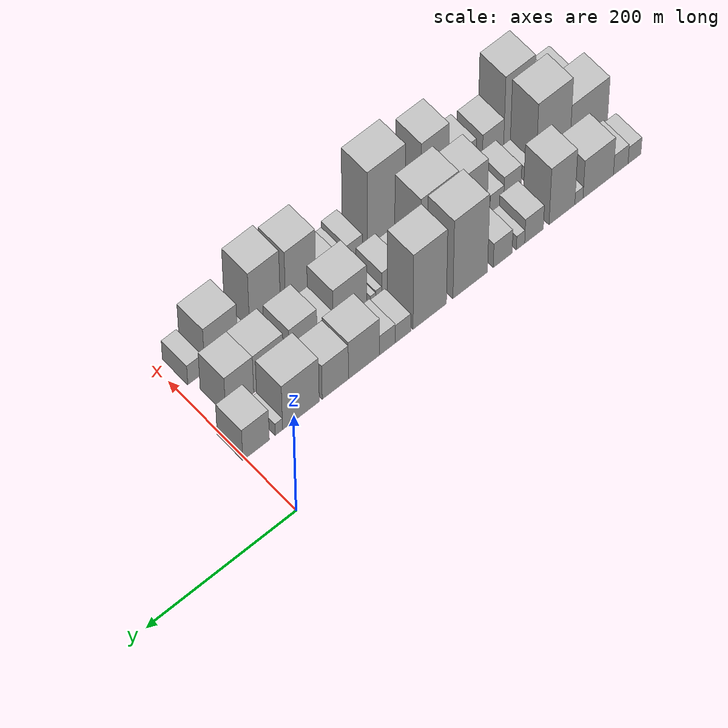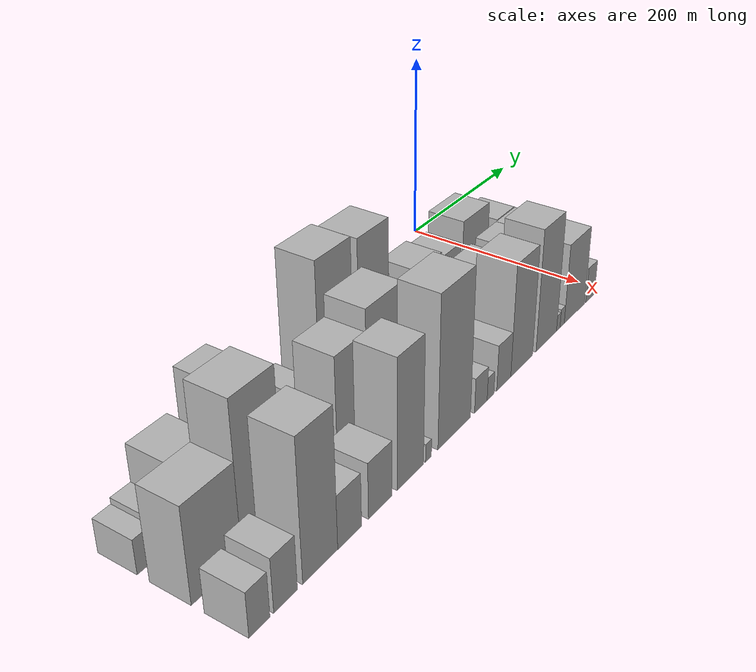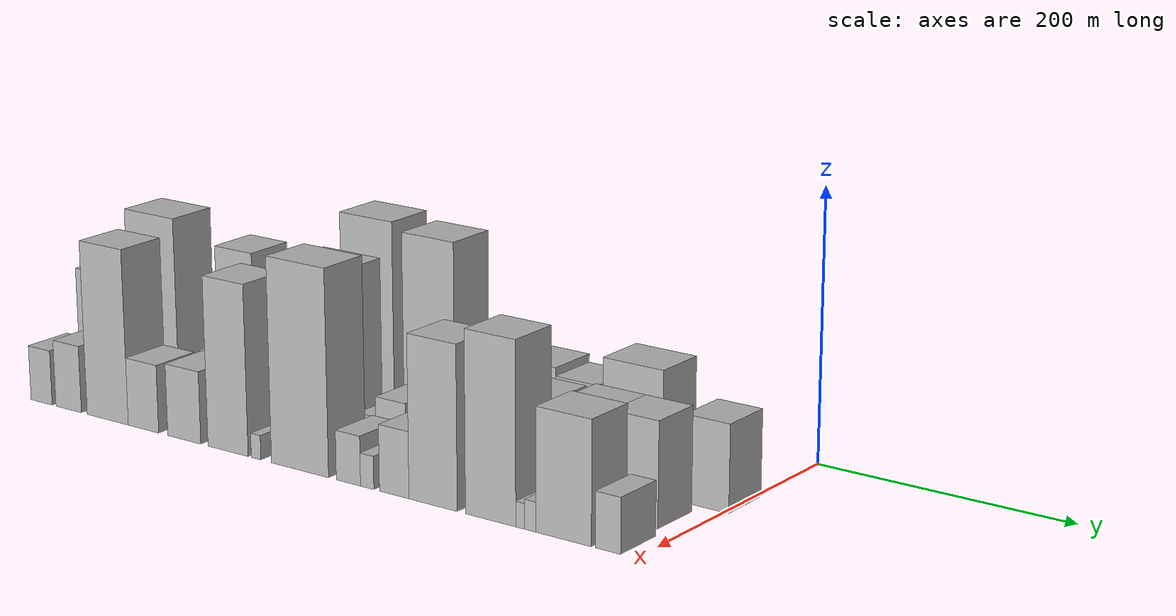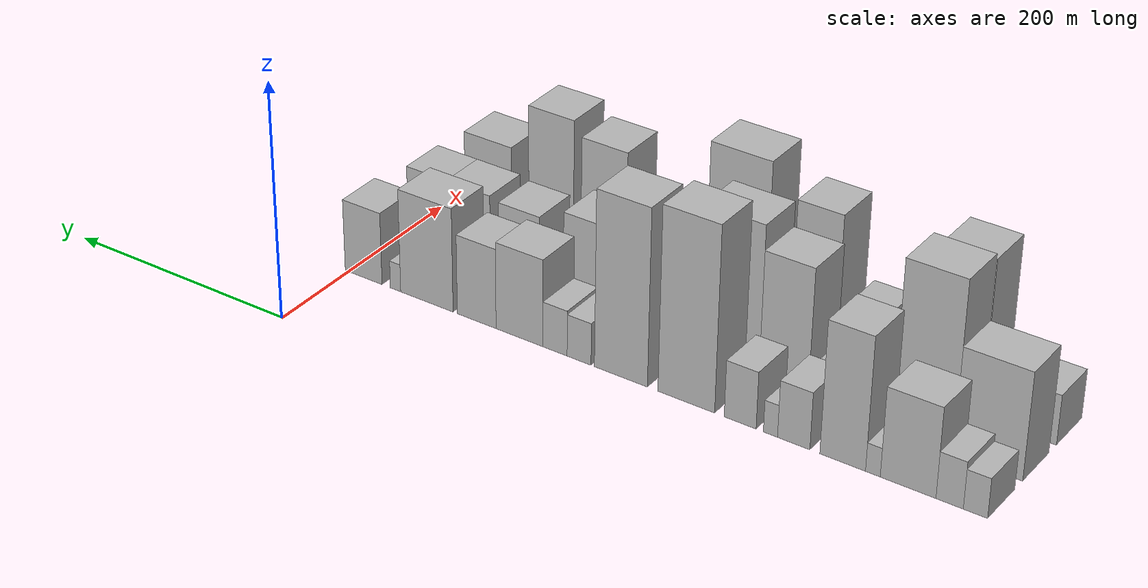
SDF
<sdf version="1.6">
 <world name="default">
  <model name="building_1">
   <static>1</static>
   <pose>100.0000 -538.8014 0 0.000000 0.000000 0.000000</pose>
   <link name="link">
    <pose>0 0 16.50 0 0 0</pose>
    <collision name="collision"><geometry><box><size>40.0000 18.3971 33.0000</size></box></geometry></collision>
    <visual name="visual">
     <cast_shadows>0</cast_shadows>
     <geometry><box><size>40.0000 18.3971 33.0000</size></box></geometry>
     <material>
      <script>
       <uri>model://HANNAS_wall/materials/scripts</uri>
       <uri>model://HANNAS_wall/materials/textures</uri>
       <name>vrc/HANNAS_wall</name>
      </script>
     </material>
    </visual>
   </link>
  </model>
  <model name="building_2">
   <static>1</static>
   <pose>100.0000 -519.1855 0 0.000000 0.000000 0.000000</pose>
   <link name="link">
    <pose>0 0 19.50 0 0 0</pose>
    <collision name="collision"><geometry><box><size>40.0000 20.8348 39.0000</size></box></geometry></collision>
    <visual name="visual">
     <cast_shadows>0</cast_shadows>
     <geometry><box><size>40.0000 20.8348 39.0000</size></box></geometry>
     <material>
      <script>
       <uri>model://HANNAS_wall/materials/scripts</uri>
       <uri>model://HANNAS_wall/materials/textures</uri>
       <name>vrc/HANNAS_wall</name>
      </script>
     </material>
    </visual>
   </link>
  </model>
  <model name="building_3">
   <static>1</static>
   <pose>100.0000 -487.1912 0 0.000000 0.000000 0.000000</pose>
   <link name="link">
    <pose>0 0 37.50 0 0 0</pose>
    <collision name="collision"><geometry><box><size>40.0000 43.1539 75.0000</size></box></geometry></collision>
    <visual name="visual">
     <cast_shadows>0</cast_shadows>
     <geometry><box><size>40.0000 43.1539 75.0000</size></box></geometry>
     <material>
      <script>
       <uri>model://HANNAS_wall/materials/scripts</uri>
       <uri>model://HANNAS_wall/materials/textures</uri>
       <name>vrc/HANNAS_wall</name>
      </script>
     </material>
    </visual>
   </link>
  </model>
  <model name="building_4">
   <static>1</static>
   <pose>100.0000 -459.8287 0 0.000000 0.000000 0.000000</pose>
   <link name="link">
    <pose>0 0 12.00 0 0 0</pose>
    <collision name="collision"><geometry><box><size>40.0000 11.5711 24.0000</size></box></geometry></collision>
    <visual name="visual">
     <cast_shadows>0</cast_shadows>
     <geometry><box><size>40.0000 11.5711 24.0000</size></box></geometry>
     <material>
      <script>
       <uri>model://HANNAS_wall/materials/scripts</uri>
       <uri>model://HANNAS_wall/materials/textures</uri>
       <name>vrc/HANNAS_wall</name>
      </script>
     </material>
    </visual>
   </link>
  </model>
  <model name="building_5">
   <static>1</static>
   <pose>100.0000 -435.8824 0 0.000000 0.000000 0.000000</pose>
   <link name="link">
    <pose>0 0 55.50 0 0 0</pose>
    <collision name="collision"><geometry><box><size>40.0000 36.3215 111.0000</size></box></geometry></collision>
    <visual name="visual">
     <cast_shadows>0</cast_shadows>
     <geometry><box><size>40.0000 36.3215 111.0000</size></box></geometry>
     <material>
      <script>
       <uri>model://HANNAS_wall/materials/scripts</uri>
       <uri>model://HANNAS_wall/materials/textures</uri>
       <name>vrc/HANNAS_wall</name>
      </script>
     </material>
    </visual>
   </link>
  </model>
  <model name="building_6">
   <static>1</static>
   <pose>100.0000 -396.5858 0 0.000000 0.000000 0.000000</pose>
   <link name="link">
    <pose>0 0 24.00 0 0 0</pose>
    <collision name="collision"><geometry><box><size>40.0000 26.2716 48.0000</size></box></geometry></collision>
    <visual name="visual">
     <cast_shadows>0</cast_shadows>
     <geometry><box><size>40.0000 26.2716 48.0000</size></box></geometry>
     <material>
      <script>
       <uri>model://HANNAS_wall/materials/scripts</uri>
       <uri>model://HANNAS_wall/materials/textures</uri>
       <name>vrc/HANNAS_wall</name>
      </script>
     </material>
    </visual>
   </link>
  </model>
  <model name="building_7">
   <static>1</static>
   <pose>100.0000 -377.6897 0 0.000000 0.000000 0.000000</pose>
   <link name="link">
    <pose>0 0 13.50 0 0 0</pose>
    <collision name="collision"><geometry><box><size>40.0000 11.5206 27.0000</size></box></geometry></collision>
    <visual name="visual">
     <cast_shadows>0</cast_shadows>
     <geometry><box><size>40.0000 11.5206 27.0000</size></box></geometry>
     <material>
      <script>
       <uri>model://HANNAS_wall/materials/scripts</uri>
       <uri>model://HANNAS_wall/materials/textures</uri>
       <name>vrc/HANNAS_wall</name>
      </script>
     </material>
    </visual>
   </link>
  </model>
  <model name="building_8">
   <static>1</static>
   <pose>100.0000 -352.7261 0 0.000000 0.000000 0.000000</pose>
   <link name="link">
    <pose>0 0 24.00 0 0 0</pose>
    <collision name="collision"><geometry><box><size>40.0000 26.4067 48.0000</size></box></geometry></collision>
    <visual name="visual">
     <cast_shadows>0</cast_shadows>
     <geometry><box><size>40.0000 26.4067 48.0000</size></box></geometry>
     <material>
      <script>
       <uri>model://HANNAS_wall/materials/scripts</uri>
       <uri>model://HANNAS_wall/materials/textures</uri>
       <name>vrc/HANNAS_wall</name>
      </script>
     </material>
    </visual>
   </link>
  </model>
  <model name="building_9">
   <static>1</static>
   <pose>100.0000 -307.4789 0 0.000000 0.000000 0.000000</pose>
   <link name="link">
    <pose>0 0 78.00 0 0 0</pose>
    <collision name="collision"><geometry><box><size>40.0000 48.0877 156.0000</size></box></geometry></collision>
    <visual name="visual">
     <cast_shadows>0</cast_shadows>
     <geometry><box><size>40.0000 48.0877 156.0000</size></box></geometry>
     <material>
      <script>
       <uri>model://HANNAS_wall/materials/scripts</uri>
       <uri>model://HANNAS_wall/materials/textures</uri>
       <name>vrc/HANNAS_wall</name>
      </script>
     </material>
    </visual>
   </link>
  </model>
  <model name="building_10">
   <static>1</static>
   <pose>100.0000 -251.3428 0 0.000000 0.000000 0.000000</pose>
   <link name="link">
    <pose>0 0 75.00 0 0 0</pose>
    <collision name="collision"><geometry><box><size>40.0000 46.1845 150.0000</size></box></geometry></collision>
    <visual name="visual">
     <cast_shadows>0</cast_shadows>
     <geometry><box><size>40.0000 46.1845 150.0000</size></box></geometry>
     <material>
      <script>
       <uri>model://HANNAS_wall/materials/scripts</uri>
       <uri>model://HANNAS_wall/materials/textures</uri>
       <name>vrc/HANNAS_wall</name>
      </script>
     </material>
    </visual>
   </link>
  </model>
  <model name="building_11">
   <static>1</static>
   <pose>100.0000 -214.6620 0 0.000000 0.000000 0.000000</pose>
   <link name="link">
    <pose>0 0 18.00 0 0 0</pose>
    <collision name="collision"><geometry><box><size>40.0000 21.1770 36.0000</size></box></geometry></collision>
    <visual name="visual">
     <cast_shadows>0</cast_shadows>
     <geometry><box><size>40.0000 21.1770 36.0000</size></box></geometry>
     <material>
      <script>
       <uri>model://HANNAS_wall/materials/scripts</uri>
       <uri>model://HANNAS_wall/materials/textures</uri>
       <name>vrc/HANNAS_wall</name>
      </script>
     </material>
    </visual>
   </link>
  </model>
  <model name="building_12">
   <static>1</static>
   <pose>100.0000 -193.2816 0 0.000000 0.000000 0.000000</pose>
   <link name="link">
    <pose>0 0 19.50 0 0 0</pose>
    <collision name="collision"><geometry><box><size>40.0000 21.5837 39.0000</size></box></geometry></collision>
    <visual name="visual">
     <cast_shadows>0</cast_shadows>
     <geometry><box><size>40.0000 21.5837 39.0000</size></box></geometry>
     <material>
      <script>
       <uri>model://HANNAS_wall/materials/scripts</uri>
       <uri>model://HANNAS_wall/materials/textures</uri>
       <name>vrc/HANNAS_wall</name>
      </script>
     </material>
    </visual>
   </link>
  </model>
  <model name="building_13">
   <static>1</static>
   <pose>100.0000 -161.1651 0 0.000000 0.000000 0.000000</pose>
   <link name="link">
    <pose>0 0 37.50 0 0 0</pose>
    <collision name="collision"><geometry><box><size>40.0000 42.6494 75.0000</size></box></geometry></collision>
    <visual name="visual">
     <cast_shadows>0</cast_shadows>
     <geometry><box><size>40.0000 42.6494 75.0000</size></box></geometry>
     <material>
      <script>
       <uri>model://HANNAS_wall/materials/scripts</uri>
       <uri>model://HANNAS_wall/materials/textures</uri>
       <name>vrc/HANNAS_wall</name>
      </script>
     </material>
    </visual>
   </link>
  </model>
  <model name="building_14">
   <static>1</static>
   <pose>100.0000 -121.9393 0 0.000000 0.000000 0.000000</pose>
   <link name="link">
    <pose>0 0 34.50 0 0 0</pose>
    <collision name="collision"><geometry><box><size>40.0000 35.8023 69.0000</size></box></geometry></collision>
    <visual name="visual">
     <cast_shadows>0</cast_shadows>
     <geometry><box><size>40.0000 35.8023 69.0000</size></box></geometry>
     <material>
      <script>
       <uri>model://HANNAS_wall/materials/scripts</uri>
       <uri>model://HANNAS_wall/materials/textures</uri>
       <name>vrc/HANNAS_wall</name>
      </script>
     </material>
    </visual>
   </link>
  </model>
  <model name="building_15">
   <static>1</static>
   <pose>100.0000 -75.2578 0 0.000000 0.000000 0.000000</pose>
   <link name="link">
    <pose>0 0 45.00 0 0 0</pose>
    <collision name="collision"><geometry><box><size>40.0000 49.5606 90.0000</size></box></geometry></collision>
    <visual name="visual">
     <cast_shadows>0</cast_shadows>
     <geometry><box><size>40.0000 49.5606 90.0000</size></box></geometry>
     <material>
      <script>
       <uri>model://HANNAS_wall/materials/scripts</uri>
       <uri>model://HANNAS_wall/materials/textures</uri>
       <name>vrc/HANNAS_wall</name>
      </script>
     </material>
    </visual>
   </link>
  </model>
  <model name="building_16">
   <static>1</static>
   <pose>100.0000 -45.5275 0 0.000000 0.000000 0.000000</pose>
   <link name="link">
    <pose>0 0 12.00 0 0 0</pose>
    <collision name="collision"><geometry><box><size>40.0000 9.9000 24.0000</size></box></geometry></collision>
    <visual name="visual">
     <cast_shadows>0</cast_shadows>
     <geometry><box><size>40.0000 9.9000 24.0000</size></box></geometry>
     <material>
      <script>
       <uri>model://HANNAS_wall/materials/scripts</uri>
       <uri>model://HANNAS_wall/materials/textures</uri>
       <name>vrc/HANNAS_wall</name>
      </script>
     </material>
    </visual>
   </link>
  </model>
  <model name="building_17">
   <static>1</static>
   <pose>100.0000 -14.7085 0 0.000000 0.000000 0.000000</pose>
   <link name="link">
    <pose>0 0 31.50 0 0 0</pose>
    <collision name="collision"><geometry><box><size>40.0000 35.7380 63.0000</size></box></geometry></collision>
    <visual name="visual">
     <cast_shadows>0</cast_shadows>
     <geometry><box><size>40.0000 35.7380 63.0000</size></box></geometry>
     <material>
      <script>
       <uri>model://HANNAS_wall/materials/scripts</uri>
       <uri>model://HANNAS_wall/materials/textures</uri>
       <name>vrc/HANNAS_wall</name>
      </script>
     </material>
    </visual>
   </link>
  </model>
  <model name="building_36">
   <static>1</static>
   <pose>152.0000 -521.1854 0 0.000000 0.000000 0.000000</pose>
   <link name="link">
    <pose>0 0 45.00 0 0 0</pose>
    <collision name="collision"><geometry><box><size>40.0000 53.6292 90.0000</size></box></geometry></collision>
    <visual name="visual">
     <cast_shadows>0</cast_shadows>
     <geometry><box><size>40.0000 53.6292 90.0000</size></box></geometry>
     <material>
      <script>
       <uri>model://HANNAS_wall/materials/scripts</uri>
       <uri>model://HANNAS_wall/materials/textures</uri>
       <name>vrc/HANNAS_wall</name>
      </script>
     </material>
    </visual>
   </link>
  </model>
  <model name="building_37">
   <static>1</static>
   <pose>152.0000 -470.1884 0 0.000000 0.000000 0.000000</pose>
   <link name="link">
    <pose>0 0 72.00 0 0 0</pose>
    <collision name="collision"><geometry><box><size>40.0000 48.3648 144.0000</size></box></geometry></collision>
    <visual name="visual">
     <cast_shadows>0</cast_shadows>
     <geometry><box><size>40.0000 48.3648 144.0000</size></box></geometry>
     <material>
      <script>
       <uri>model://HANNAS_wall/materials/scripts</uri>
       <uri>model://HANNAS_wall/materials/textures</uri>
       <name>vrc/HANNAS_wall</name>
      </script>
     </material>
    </visual>
   </link>
  </model>
  <model name="building_38">
   <static>1</static>
   <pose>152.0000 -440.2107 0 0.000000 0.000000 0.000000</pose>
   <link name="link">
    <pose>0 0 13.50 0 0 0</pose>
    <collision name="collision"><geometry><box><size>40.0000 11.5907 27.0000</size></box></geometry></collision>
    <visual name="visual">
     <cast_shadows>0</cast_shadows>
     <geometry><box><size>40.0000 11.5907 27.0000</size></box></geometry>
     <material>
      <script>
       <uri>model://HANNAS_wall/materials/scripts</uri>
       <uri>model://HANNAS_wall/materials/textures</uri>
       <name>vrc/HANNAS_wall</name>
      </script>
     </material>
    </visual>
   </link>
  </model>
  <model name="building_39">
   <static>1</static>
   <pose>152.0000 -413.2868 0 0.000000 0.000000 0.000000</pose>
   <link name="link">
    <pose>0 0 24.00 0 0 0</pose>
    <collision name="collision"><geometry><box><size>40.0000 24.2573 48.0000</size></box></geometry></collision>
    <visual name="visual">
     <cast_shadows>0</cast_shadows>
     <geometry><box><size>40.0000 24.2573 48.0000</size></box></geometry>
     <material>
      <script>
       <uri>model://HANNAS_wall/materials/scripts</uri>
       <uri>model://HANNAS_wall/materials/textures</uri>
       <name>vrc/HANNAS_wall</name>
      </script>
     </material>
    </visual>
   </link>
  </model>
  <model name="building_40">
   <static>1</static>
   <pose>152.0000 -391.4128 0 0.000000 0.000000 0.000000</pose>
   <link name="link">
    <pose>0 0 16.50 0 0 0</pose>
    <collision name="collision"><geometry><box><size>40.0000 19.4907 33.0000</size></box></geometry></collision>
    <visual name="visual">
     <cast_shadows>0</cast_shadows>
     <geometry><box><size>40.0000 19.4907 33.0000</size></box></geometry>
     <material>
      <script>
       <uri>model://HANNAS_wall/materials/scripts</uri>
       <uri>model://HANNAS_wall/materials/textures</uri>
       <name>vrc/HANNAS_wall</name>
      </script>
     </material>
    </visual>
   </link>
  </model>
  <model name="building_41">
   <static>1</static>
   <pose>152.0000 -357.0711 0 0.000000 0.000000 0.000000</pose>
   <link name="link">
    <pose>0 0 55.50 0 0 0</pose>
    <collision name="collision"><geometry><box><size>40.0000 41.1926 111.0000</size></box></geometry></collision>
    <visual name="visual">
     <cast_shadows>0</cast_shadows>
     <geometry><box><size>40.0000 41.1926 111.0000</size></box></geometry>
     <material>
      <script>
       <uri>model://HANNAS_wall/materials/scripts</uri>
       <uri>model://HANNAS_wall/materials/textures</uri>
       <name>vrc/HANNAS_wall</name>
      </script>
     </material>
    </visual>
   </link>
  </model>
  <model name="building_42">
   <static>1</static>
   <pose>152.0000 -310.6361 0 0.000000 0.000000 0.000000</pose>
   <link name="link">
    <pose>0 0 66.00 0 0 0</pose>
    <collision name="collision"><geometry><box><size>40.0000 51.6773 132.0000</size></box></geometry></collision>
    <visual name="visual">
     <cast_shadows>0</cast_shadows>
     <geometry><box><size>40.0000 51.6773 132.0000</size></box></geometry>
     <material>
      <script>
       <uri>model://HANNAS_wall/materials/scripts</uri>
       <uri>model://HANNAS_wall/materials/textures</uri>
       <name>vrc/HANNAS_wall</name>
      </script>
     </material>
    </visual>
   </link>
  </model>
  <model name="building_43">
   <static>1</static>
   <pose>152.0000 -279.4944 0 0.000000 0.000000 0.000000</pose>
   <link name="link">
    <pose>0 0 12.00 0 0 0</pose>
    <collision name="collision"><geometry><box><size>40.0000 10.6062 24.0000</size></box></geometry></collision>
    <visual name="visual">
     <cast_shadows>0</cast_shadows>
     <geometry><box><size>40.0000 10.6062 24.0000</size></box></geometry>
     <material>
      <script>
       <uri>model://HANNAS_wall/materials/scripts</uri>
       <uri>model://HANNAS_wall/materials/textures</uri>
       <name>vrc/HANNAS_wall</name>
      </script>
     </material>
    </visual>
   </link>
  </model>
  <model name="building_44">
   <static>1</static>
   <pose>152.0000 -265.9766 0 0.000000 0.000000 0.000000</pose>
   <link name="link">
    <pose>0 0 15.00 0 0 0</pose>
    <collision name="collision"><geometry><box><size>40.0000 16.4294 30.0000</size></box></geometry></collision>
    <visual name="visual">
     <cast_shadows>0</cast_shadows>
     <geometry><box><size>40.0000 16.4294 30.0000</size></box></geometry>
     <material>
      <script>
       <uri>model://HANNAS_wall/materials/scripts</uri>
       <uri>model://HANNAS_wall/materials/textures</uri>
       <name>vrc/HANNAS_wall</name>
      </script>
     </material>
    </visual>
   </link>
  </model>
  <model name="building_45">
   <static>1</static>
   <pose>152.0000 -244.4746 0 0.000000 0.000000 0.000000</pose>
   <link name="link">
    <pose>0 0 22.50 0 0 0</pose>
    <collision name="collision"><geometry><box><size>40.0000 26.5746 45.0000</size></box></geometry></collision>
    <visual name="visual">
     <cast_shadows>0</cast_shadows>
     <geometry><box><size>40.0000 26.5746 45.0000</size></box></geometry>
     <material>
      <script>
       <uri>model://HANNAS_wall/materials/scripts</uri>
       <uri>model://HANNAS_wall/materials/textures</uri>
       <name>vrc/HANNAS_wall</name>
      </script>
     </material>
    </visual>
   </link>
  </model>
  <model name="building_46">
   <static>1</static>
   <pose>152.0000 -227.0132 0 0.000000 0.000000 0.000000</pose>
   <link name="link">
    <pose>0 0 9.00 0 0 0</pose>
    <collision name="collision"><geometry><box><size>40.0000 8.3482 18.0000</size></box></geometry></collision>
    <visual name="visual">
     <cast_shadows>0</cast_shadows>
     <geometry><box><size>40.0000 8.3482 18.0000</size></box></geometry>
     <material>
      <script>
       <uri>model://HANNAS_wall/materials/scripts</uri>
       <uri>model://HANNAS_wall/materials/textures</uri>
       <name>vrc/HANNAS_wall</name>
      </script>
     </material>
    </visual>
   </link>
  </model>
  <model name="building_47">
   <static>1</static>
   <pose>152.0000 -219.2626 0 0.000000 0.000000 0.000000</pose>
   <link name="link">
    <pose>0 0 7.50 0 0 0</pose>
    <collision name="collision"><geometry><box><size>40.0000 7.1529 15.0000</size></box></geometry></collision>
    <visual name="visual">
     <cast_shadows>0</cast_shadows>
     <geometry><box><size>40.0000 7.1529 15.0000</size></box></geometry>
     <material>
      <script>
       <uri>model://HANNAS_wall/materials/scripts</uri>
       <uri>model://HANNAS_wall/materials/textures</uri>
       <name>vrc/HANNAS_wall</name>
      </script>
     </material>
    </visual>
   </link>
  </model>
  <model name="building_48">
   <static>1</static>
   <pose>152.0000 -187.7035 0 0.000000 0.000000 0.000000</pose>
   <link name="link">
    <pose>0 0 42.00 0 0 0</pose>
    <collision name="collision"><geometry><box><size>40.0000 45.9654 84.0000</size></box></geometry></collision>
    <visual name="visual">
     <cast_shadows>0</cast_shadows>
     <geometry><box><size>40.0000 45.9654 84.0000</size></box></geometry>
     <material>
      <script>
       <uri>model://HANNAS_wall/materials/scripts</uri>
       <uri>model://HANNAS_wall/materials/textures</uri>
       <name>vrc/HANNAS_wall</name>
      </script>
     </material>
    </visual>
   </link>
  </model>
  <model name="building_49">
   <static>1</static>
   <pose>152.0000 -153.7441 0 0.000000 0.000000 0.000000</pose>
   <link name="link">
    <pose>0 0 21.00 0 0 0</pose>
    <collision name="collision"><geometry><box><size>40.0000 21.9533 42.0000</size></box></geometry></collision>
    <visual name="visual">
     <cast_shadows>0</cast_shadows>
     <geometry><box><size>40.0000 21.9533 42.0000</size></box></geometry>
     <material>
      <script>
       <uri>model://HANNAS_wall/materials/scripts</uri>
       <uri>model://HANNAS_wall/materials/textures</uri>
       <name>vrc/HANNAS_wall</name>
      </script>
     </material>
    </visual>
   </link>
  </model>
  <model name="building_50">
   <static>1</static>
   <pose>152.0000 -123.9386 0 0.000000 0.000000 0.000000</pose>
   <link name="link">
    <pose>0 0 36.00 0 0 0</pose>
    <collision name="collision"><geometry><box><size>40.0000 37.6578 72.0000</size></box></geometry></collision>
    <visual name="visual">
     <cast_shadows>0</cast_shadows>
     <geometry><box><size>40.0000 37.6578 72.0000</size></box></geometry>
     <material>
      <script>
       <uri>model://HANNAS_wall/materials/scripts</uri>
       <uri>model://HANNAS_wall/materials/textures</uri>
       <name>vrc/HANNAS_wall</name>
      </script>
     </material>
    </visual>
   </link>
  </model>
  <model name="building_51">
   <static>1</static>
   <pose>152.0000 -76.7807 0 0.000000 0.000000 0.000000</pose>
   <link name="link">
    <pose>0 0 37.50 0 0 0</pose>
    <collision name="collision"><geometry><box><size>40.0000 40.6580 75.0000</size></box></geometry></collision>
    <visual name="visual">
     <cast_shadows>0</cast_shadows>
     <geometry><box><size>40.0000 40.6580 75.0000</size></box></geometry>
     <material>
      <script>
       <uri>model://HANNAS_wall/materials/scripts</uri>
       <uri>model://HANNAS_wall/materials/textures</uri>
       <name>vrc/HANNAS_wall</name>
      </script>
     </material>
    </visual>
   </link>
  </model>
  <model name="building_52">
   <static>1</static>
   <pose>152.0000 -37.5389 0 0.000000 0.000000 0.000000</pose>
   <link name="link">
    <pose>0 0 37.50 0 0 0</pose>
    <collision name="collision"><geometry><box><size>40.0000 37.8257 75.0000</size></box></geometry></collision>
    <visual name="visual">
     <cast_shadows>0</cast_shadows>
     <geometry><box><size>40.0000 37.8257 75.0000</size></box></geometry>
     <material>
      <script>
       <uri>model://HANNAS_wall/materials/scripts</uri>
       <uri>model://HANNAS_wall/materials/textures</uri>
       <name>vrc/HANNAS_wall</name>
      </script>
     </material>
    </visual>
   </link>
  </model>
  <model name="building_68">
   <static>1</static>
   <pose>204.0000 -536.9274 0 0.000000 0.000000 0.000000</pose>
   <link name="link">
    <pose>0 0 21.00 0 0 0</pose>
    <collision name="collision"><geometry><box><size>40.0000 22.1452 42.0000</size></box></geometry></collision>
    <visual name="visual">
     <cast_shadows>0</cast_shadows>
     <geometry><box><size>40.0000 22.1452 42.0000</size></box></geometry>
     <material>
      <script>
       <uri>model://HANNAS_wall/materials/scripts</uri>
       <uri>model://HANNAS_wall/materials/textures</uri>
       <name>vrc/HANNAS_wall</name>
      </script>
     </material>
    </visual>
   </link>
  </model>
  <model name="building_69">
   <static>1</static>
   <pose>204.0000 -508.7487 0 0.000000 0.000000 0.000000</pose>
   <link name="link">
    <pose>0 0 25.50 0 0 0</pose>
    <collision name="collision"><geometry><box><size>40.0000 26.2121 51.0000</size></box></geometry></collision>
    <visual name="visual">
     <cast_shadows>0</cast_shadows>
     <geometry><box><size>40.0000 26.2121 51.0000</size></box></geometry>
     <material>
      <script>
       <uri>model://HANNAS_wall/materials/scripts</uri>
       <uri>model://HANNAS_wall/materials/textures</uri>
       <name>vrc/HANNAS_wall</name>
      </script>
     </material>
    </visual>
   </link>
  </model>
  <model name="building_70">
   <static>1</static>
   <pose>204.0000 -468.8541 0 0.000000 0.000000 0.000000</pose>
   <link name="link">
    <pose>0 0 66.00 0 0 0</pose>
    <collision name="collision"><geometry><box><size>40.0000 41.5771 132.0000</size></box></geometry></collision>
    <visual name="visual">
     <cast_shadows>0</cast_shadows>
     <geometry><box><size>40.0000 41.5771 132.0000</size></box></geometry>
     <material>
      <script>
       <uri>model://HANNAS_wall/materials/scripts</uri>
       <uri>model://HANNAS_wall/materials/textures</uri>
       <name>vrc/HANNAS_wall</name>
      </script>
     </material>
    </visual>
   </link>
  </model>
  <model name="building_71">
   <static>1</static>
   <pose>204.0000 -432.9919 0 0.000000 0.000000 0.000000</pose>
   <link name="link">
    <pose>0 0 25.50 0 0 0</pose>
    <collision name="collision"><geometry><box><size>40.0000 30.1472 51.0000</size></box></geometry></collision>
    <visual name="visual">
     <cast_shadows>0</cast_shadows>
     <geometry><box><size>40.0000 30.1472 51.0000</size></box></geometry>
     <material>
      <script>
       <uri>model://HANNAS_wall/materials/scripts</uri>
       <uri>model://HANNAS_wall/materials/textures</uri>
       <name>vrc/HANNAS_wall</name>
      </script>
     </material>
    </visual>
   </link>
  </model>
  <model name="building_72">
   <static>1</static>
   <pose>204.0000 -392.9076 0 0.000000 0.000000 0.000000</pose>
   <link name="link">
    <pose>0 0 27.00 0 0 0</pose>
    <collision name="collision"><geometry><box><size>40.0000 32.0214 54.0000</size></box></geometry></collision>
    <visual name="visual">
     <cast_shadows>0</cast_shadows>
     <geometry><box><size>40.0000 32.0214 54.0000</size></box></geometry>
     <material>
      <script>
       <uri>model://HANNAS_wall/materials/scripts</uri>
       <uri>model://HANNAS_wall/materials/textures</uri>
       <name>vrc/HANNAS_wall</name>
      </script>
     </material>
    </visual>
   </link>
  </model>
  <model name="building_73">
   <static>1</static>
   <pose>204.0000 -350.8503 0 0.000000 0.000000 0.000000</pose>
   <link name="link">
    <pose>0 0 63.00 0 0 0</pose>
    <collision name="collision"><geometry><box><size>40.0000 38.0933 126.0000</size></box></geometry></collision>
    <visual name="visual">
     <cast_shadows>0</cast_shadows>
     <geometry><box><size>40.0000 38.0933 126.0000</size></box></geometry>
     <material>
      <script>
       <uri>model://HANNAS_wall/materials/scripts</uri>
       <uri>model://HANNAS_wall/materials/textures</uri>
       <name>vrc/HANNAS_wall</name>
      </script>
     </material>
    </visual>
   </link>
  </model>
  <model name="building_74">
   <static>1</static>
   <pose>204.0000 -324.3527 0 0.000000 0.000000 0.000000</pose>
   <link name="link">
    <pose>0 0 9.00 0 0 0</pose>
    <collision name="collision"><geometry><box><size>40.0000 8.9020 18.0000</size></box></geometry></collision>
    <visual name="visual">
     <cast_shadows>0</cast_shadows>
     <geometry><box><size>40.0000 8.9020 18.0000</size></box></geometry>
     <material>
      <script>
       <uri>model://HANNAS_wall/materials/scripts</uri>
       <uri>model://HANNAS_wall/materials/textures</uri>
       <name>vrc/HANNAS_wall</name>
      </script>
     </material>
    </visual>
   </link>
  </model>
  <model name="building_75">
   <static>1</static>
   <pose>204.0000 -283.7932 0 0.000000 0.000000 0.000000</pose>
   <link name="link">
    <pose>0 0 75.00 0 0 0</pose>
    <collision name="collision"><geometry><box><size>40.0000 52.2170 150.0000</size></box></geometry></collision>
    <visual name="visual">
     <cast_shadows>0</cast_shadows>
     <geometry><box><size>40.0000 52.2170 150.0000</size></box></geometry>
     <material>
      <script>
       <uri>model://HANNAS_wall/materials/scripts</uri>
       <uri>model://HANNAS_wall/materials/textures</uri>
       <name>vrc/HANNAS_wall</name>
      </script>
     </material>
    </visual>
   </link>
  </model>
  <model name="building_76">
   <static>1</static>
   <pose>204.0000 -239.8953 0 0.000000 0.000000 0.000000</pose>
   <link name="link">
    <pose>0 0 18.00 0 0 0</pose>
    <collision name="collision"><geometry><box><size>40.0000 21.5786 36.0000</size></box></geometry></collision>
    <visual name="visual">
     <cast_shadows>0</cast_shadows>
     <geometry><box><size>40.0000 21.5786 36.0000</size></box></geometry>
     <material>
      <script>
       <uri>model://HANNAS_wall/materials/scripts</uri>
       <uri>model://HANNAS_wall/materials/textures</uri>
       <name>vrc/HANNAS_wall</name>
      </script>
     </material>
    </visual>
   </link>
  </model>
  <model name="building_77">
   <static>1</static>
   <pose>204.0000 -223.1751 0 0.000000 0.000000 0.000000</pose>
   <link name="link">
    <pose>0 0 12.00 0 0 0</pose>
    <collision name="collision"><geometry><box><size>40.0000 11.8619 24.0000</size></box></geometry></collision>
    <visual name="visual">
     <cast_shadows>0</cast_shadows>
     <geometry><box><size>40.0000 11.8619 24.0000</size></box></geometry>
     <material>
      <script>
       <uri>model://HANNAS_wall/materials/scripts</uri>
       <uri>model://HANNAS_wall/materials/textures</uri>
       <name>vrc/HANNAS_wall</name>
      </script>
     </material>
    </visual>
   </link>
  </model>
  <model name="building_78">
   <static>1</static>
   <pose>204.0000 -199.3908 0 0.000000 0.000000 0.000000</pose>
   <link name="link">
    <pose>0 0 24.00 0 0 0</pose>
    <collision name="collision"><geometry><box><size>40.0000 25.7066 48.0000</size></box></geometry></collision>
    <visual name="visual">
     <cast_shadows>0</cast_shadows>
     <geometry><box><size>40.0000 25.7066 48.0000</size></box></geometry>
     <material>
      <script>
       <uri>model://HANNAS_wall/materials/scripts</uri>
       <uri>model://HANNAS_wall/materials/textures</uri>
       <name>vrc/HANNAS_wall</name>
      </script>
     </material>
    </visual>
   </link>
  </model>
  <model name="building_79">
   <static>1</static>
   <pose>204.0000 -165.8436 0 0.000000 0.000000 0.000000</pose>
   <link name="link">
    <pose>0 0 58.50 0 0 0</pose>
    <collision name="collision"><geometry><box><size>40.0000 41.3880 117.0000</size></box></geometry></collision>
    <visual name="visual">
     <cast_shadows>0</cast_shadows>
     <geometry><box><size>40.0000 41.3880 117.0000</size></box></geometry>
     <material>
      <script>
       <uri>model://HANNAS_wall/materials/scripts</uri>
       <uri>model://HANNAS_wall/materials/textures</uri>
       <name>vrc/HANNAS_wall</name>
      </script>
     </material>
    </visual>
   </link>
  </model>
  <model name="building_80">
   <static>1</static>
   <pose>204.0000 -117.2544 0 0.000000 0.000000 0.000000</pose>
   <link name="link">
    <pose>0 0 64.50 0 0 0</pose>
    <collision name="collision"><geometry><box><size>40.0000 41.7903 129.0000</size></box></geometry></collision>
    <visual name="visual">
     <cast_shadows>0</cast_shadows>
     <geometry><box><size>40.0000 41.7903 129.0000</size></box></geometry>
     <material>
      <script>
       <uri>model://HANNAS_wall/materials/scripts</uri>
       <uri>model://HANNAS_wall/materials/textures</uri>
       <name>vrc/HANNAS_wall</name>
      </script>
     </material>
    </visual>
   </link>
  </model>
  <model name="building_81">
   <static>1</static>
   <pose>204.0000 -92.6925 0 0.000000 0.000000 0.000000</pose>
   <link name="link">
    <pose>0 0 9.00 0 0 0</pose>
    <collision name="collision"><geometry><box><size>40.0000 7.3336 18.0000</size></box></geometry></collision>
    <visual name="visual">
     <cast_shadows>0</cast_shadows>
     <geometry><box><size>40.0000 7.3336 18.0000</size></box></geometry>
     <material>
      <script>
       <uri>model://HANNAS_wall/materials/scripts</uri>
       <uri>model://HANNAS_wall/materials/textures</uri>
       <name>vrc/HANNAS_wall</name>
      </script>
     </material>
    </visual>
   </link>
  </model>
  <model name="building_82">
   <static>1</static>
   <pose>204.0000 -84.5214 0 0.000000 0.000000 0.000000</pose>
   <link name="link">
    <pose>0 0 10.50 0 0 0</pose>
    <collision name="collision"><geometry><box><size>40.0000 9.0085 21.0000</size></box></geometry></collision>
    <visual name="visual">
     <cast_shadows>0</cast_shadows>
     <geometry><box><size>40.0000 9.0085 21.0000</size></box></geometry>
     <material>
      <script>
       <uri>model://HANNAS_wall/materials/scripts</uri>
       <uri>model://HANNAS_wall/materials/textures</uri>
       <name>vrc/HANNAS_wall</name>
      </script>
     </material>
    </visual>
   </link>
  </model>
  <model name="building_83">
   <static>1</static>
   <pose>204.0000 -57.6242 0 0.000000 0.000000 0.000000</pose>
   <link name="link">
    <pose>0 0 43.50 0 0 0</pose>
    <collision name="collision"><geometry><box><size>40.0000 44.7859 87.0000</size></box></geometry></collision>
    <visual name="visual">
     <cast_shadows>0</cast_shadows>
     <geometry><box><size>40.0000 44.7859 87.0000</size></box></geometry>
     <material>
      <script>
       <uri>model://HANNAS_wall/materials/scripts</uri>
       <uri>model://HANNAS_wall/materials/textures</uri>
       <name>vrc/HANNAS_wall</name>
      </script>
     </material>
    </visual>
   </link>
  </model>
  <model name="building_84">
   <static>1</static>
   <pose>204.0000 -22.2063 0 0.000000 0.000000 0.000000</pose>
   <link name="link">
    <pose>0 0 19.50 0 0 0</pose>
    <collision name="collision"><geometry><box><size>40.0000 20.0499 39.0000</size></box></geometry></collision>
    <visual name="visual">
     <cast_shadows>0</cast_shadows>
     <geometry><box><size>40.0000 20.0499 39.0000</size></box></geometry>
     <material>
      <script>
       <uri>model://HANNAS_wall/materials/scripts</uri>
       <uri>model://HANNAS_wall/materials/textures</uri>
       <name>vrc/HANNAS_wall</name>
      </script>
     </material>
    </visual>
   </link>
  </model>
 </world>
</sdf>
